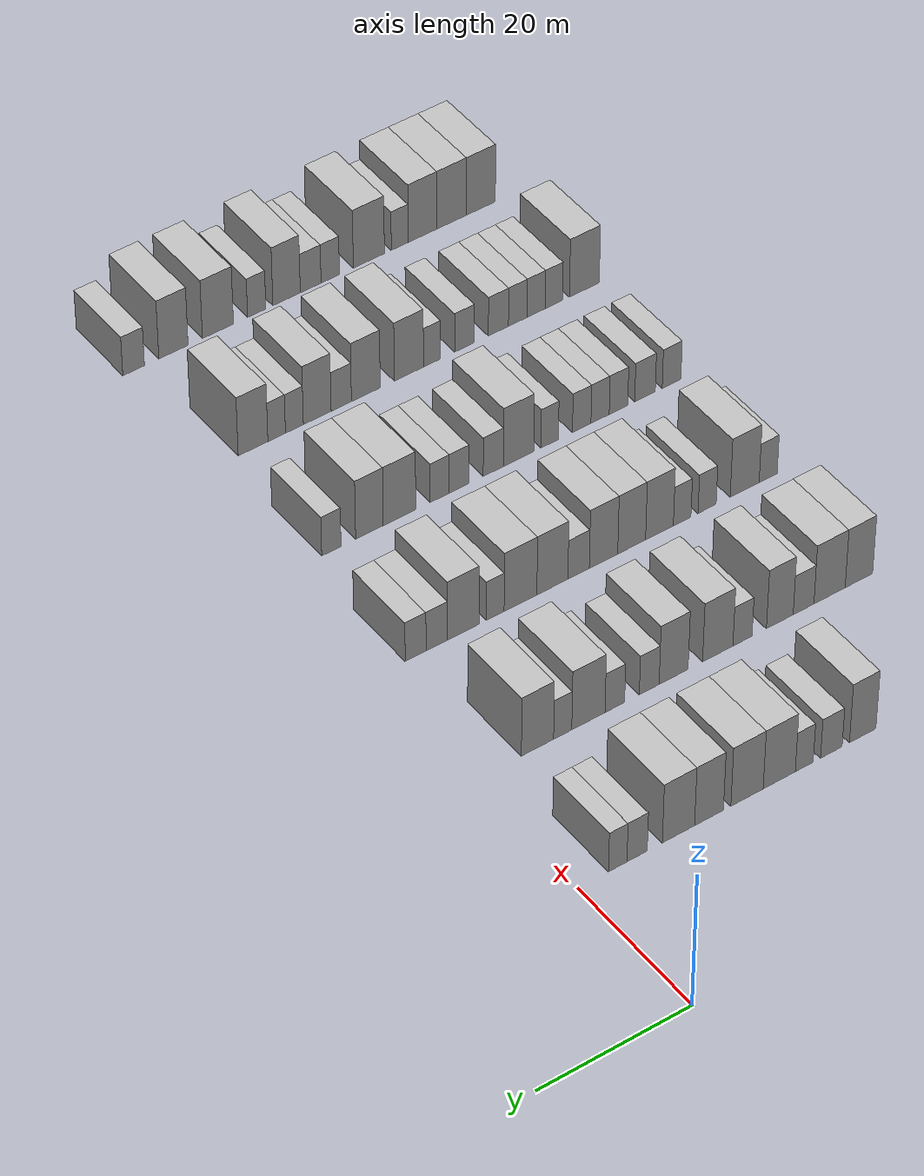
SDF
<sdf version="1.6">
 <world name="default">
  <model name="building_74">
   <static>1</static>
   <pose>25.0000 -38.3096 0 0.000000 0.000000 0.000000</pose>
   <link name="link">
    <pose>0 0 4.50 0 0 0</pose>
    <collision name="collision"><geometry><box><size>10.0000 3.6567 9.0000</size></box></geometry></collision>
    <visual name="visual">
     <cast_shadows>0</cast_shadows>
     <geometry><box><size>10.0000 3.6567 9.0000</size></box></geometry>
     <material>
      <script>
       <uri>model://HANNAS_wall/materials/scripts</uri>
       <uri>model://HANNAS_wall/materials/textures</uri>
       <name>vrc/HANNAS_wall</name>
      </script>
     </material>
    </visual>
   </link>
  </model>
  <model name="building_75">
   <static>1</static>
   <pose>25.0000 -33.9942 0 0.000000 0.000000 0.000000</pose>
   <link name="link">
    <pose>0 0 3.00 0 0 0</pose>
    <collision name="collision"><geometry><box><size>10.0000 2.9740 6.0000</size></box></geometry></collision>
    <visual name="visual">
     <cast_shadows>0</cast_shadows>
     <geometry><box><size>10.0000 2.9740 6.0000</size></box></geometry>
     <material>
      <script>
       <uri>model://HANNAS_wall/materials/scripts</uri>
       <uri>model://HANNAS_wall/materials/textures</uri>
       <name>vrc/HANNAS_wall</name>
      </script>
     </material>
    </visual>
   </link>
  </model>
  <model name="building_76">
   <static>1</static>
   <pose>25.0000 -30.2838 0 0.000000 0.000000 0.000000</pose>
   <link name="link">
    <pose>0 0 3.00 0 0 0</pose>
    <collision name="collision"><geometry><box><size>10.0000 2.4469 6.0000</size></box></geometry></collision>
    <visual name="visual">
     <cast_shadows>0</cast_shadows>
     <geometry><box><size>10.0000 2.4469 6.0000</size></box></geometry>
     <material>
      <script>
       <uri>model://HANNAS_wall/materials/scripts</uri>
       <uri>model://HANNAS_wall/materials/textures</uri>
       <name>vrc/HANNAS_wall</name>
      </script>
     </material>
    </visual>
   </link>
  </model>
  <model name="building_77">
   <static>1</static>
   <pose>25.0000 -26.8770 0 0.000000 0.000000 0.000000</pose>
   <link name="link">
    <pose>0 0 4.50 0 0 0</pose>
    <collision name="collision"><geometry><box><size>10.0000 4.3666 9.0000</size></box></geometry></collision>
    <visual name="visual">
     <cast_shadows>0</cast_shadows>
     <geometry><box><size>10.0000 4.3666 9.0000</size></box></geometry>
     <material>
      <script>
       <uri>model://HANNAS_wall/materials/scripts</uri>
       <uri>model://HANNAS_wall/materials/textures</uri>
       <name>vrc/HANNAS_wall</name>
      </script>
     </material>
    </visual>
   </link>
  </model>
  <model name="building_78">
   <static>1</static>
   <pose>25.0000 -22.5072 0 0.000000 0.000000 0.000000</pose>
   <link name="link">
    <pose>0 0 4.50 0 0 0</pose>
    <collision name="collision"><geometry><box><size>10.0000 4.3730 9.0000</size></box></geometry></collision>
    <visual name="visual">
     <cast_shadows>0</cast_shadows>
     <geometry><box><size>10.0000 4.3730 9.0000</size></box></geometry>
     <material>
      <script>
       <uri>model://HANNAS_wall/materials/scripts</uri>
       <uri>model://HANNAS_wall/materials/textures</uri>
       <name>vrc/HANNAS_wall</name>
      </script>
     </material>
    </visual>
   </link>
  </model>
  <model name="building_79">
   <static>1</static>
   <pose>25.0000 -17.3835 0 0.000000 0.000000 0.000000</pose>
   <link name="link">
    <pose>0 0 4.50 0 0 0</pose>
    <collision name="collision"><geometry><box><size>10.0000 3.8745 9.0000</size></box></geometry></collision>
    <visual name="visual">
     <cast_shadows>0</cast_shadows>
     <geometry><box><size>10.0000 3.8745 9.0000</size></box></geometry>
     <material>
      <script>
       <uri>model://HANNAS_wall/materials/scripts</uri>
       <uri>model://HANNAS_wall/materials/textures</uri>
       <name>vrc/HANNAS_wall</name>
      </script>
     </material>
    </visual>
   </link>
  </model>
  <model name="building_80">
   <static>1</static>
   <pose>25.0000 -13.2967 0 0.000000 0.000000 0.000000</pose>
   <link name="link">
    <pose>0 0 4.50 0 0 0</pose>
    <collision name="collision"><geometry><box><size>10.0000 4.2990 9.0000</size></box></geometry></collision>
    <visual name="visual">
     <cast_shadows>0</cast_shadows>
     <geometry><box><size>10.0000 4.2990 9.0000</size></box></geometry>
     <material>
      <script>
       <uri>model://HANNAS_wall/materials/scripts</uri>
       <uri>model://HANNAS_wall/materials/textures</uri>
       <name>vrc/HANNAS_wall</name>
      </script>
     </material>
    </visual>
   </link>
  </model>
  <model name="building_81">
   <static>1</static>
   <pose>25.0000 -7.8038 0 0.000000 0.000000 0.000000</pose>
   <link name="link">
    <pose>0 0 3.00 0 0 0</pose>
    <collision name="collision"><geometry><box><size>10.0000 2.6868 6.0000</size></box></geometry></collision>
    <visual name="visual">
     <cast_shadows>0</cast_shadows>
     <geometry><box><size>10.0000 2.6868 6.0000</size></box></geometry>
     <material>
      <script>
       <uri>model://HANNAS_wall/materials/scripts</uri>
       <uri>model://HANNAS_wall/materials/textures</uri>
       <name>vrc/HANNAS_wall</name>
      </script>
     </material>
    </visual>
   </link>
  </model>
  <model name="building_82">
   <static>1</static>
   <pose>25.0000 -5.2399 0 0.000000 0.000000 0.000000</pose>
   <link name="link">
    <pose>0 0 3.00 0 0 0</pose>
    <collision name="collision"><geometry><box><size>10.0000 2.4410 6.0000</size></box></geometry></collision>
    <visual name="visual">
     <cast_shadows>0</cast_shadows>
     <geometry><box><size>10.0000 2.4410 6.0000</size></box></geometry>
     <material>
      <script>
       <uri>model://HANNAS_wall/materials/scripts</uri>
       <uri>model://HANNAS_wall/materials/textures</uri>
       <name>vrc/HANNAS_wall</name>
      </script>
     </material>
    </visual>
   </link>
  </model>
  <model name="building_247">
   <static>1</static>
   <pose>44.0000 -52.8477 0 0.000000 0.000000 0.000000</pose>
   <link name="link">
    <pose>0 0 4.50 0 0 0</pose>
    <collision name="collision"><geometry><box><size>10.0000 3.8971 9.0000</size></box></geometry></collision>
    <visual name="visual">
     <cast_shadows>0</cast_shadows>
     <geometry><box><size>10.0000 3.8971 9.0000</size></box></geometry>
     <material>
      <script>
       <uri>model://HANNAS_wall/materials/scripts</uri>
       <uri>model://HANNAS_wall/materials/textures</uri>
       <name>vrc/HANNAS_wall</name>
      </script>
     </material>
    </visual>
   </link>
  </model>
  <model name="building_248">
   <static>1</static>
   <pose>44.0000 -48.6936 0 0.000000 0.000000 0.000000</pose>
   <link name="link">
    <pose>0 0 4.50 0 0 0</pose>
    <collision name="collision"><geometry><box><size>10.0000 4.4112 9.0000</size></box></geometry></collision>
    <visual name="visual">
     <cast_shadows>0</cast_shadows>
     <geometry><box><size>10.0000 4.4112 9.0000</size></box></geometry>
     <material>
      <script>
       <uri>model://HANNAS_wall/materials/scripts</uri>
       <uri>model://HANNAS_wall/materials/textures</uri>
       <name>vrc/HANNAS_wall</name>
      </script>
     </material>
    </visual>
   </link>
  </model>
  <model name="building_249">
   <static>1</static>
   <pose>44.0000 -45.0301 0 0.000000 0.000000 0.000000</pose>
   <link name="link">
    <pose>0 0 3.00 0 0 0</pose>
    <collision name="collision"><geometry><box><size>10.0000 2.9157 6.0000</size></box></geometry></collision>
    <visual name="visual">
     <cast_shadows>0</cast_shadows>
     <geometry><box><size>10.0000 2.9157 6.0000</size></box></geometry>
     <material>
      <script>
       <uri>model://HANNAS_wall/materials/scripts</uri>
       <uri>model://HANNAS_wall/materials/textures</uri>
       <name>vrc/HANNAS_wall</name>
      </script>
     </material>
    </visual>
   </link>
  </model>
  <model name="building_250">
   <static>1</static>
   <pose>44.0000 -41.6997 0 0.000000 0.000000 0.000000</pose>
   <link name="link">
    <pose>0 0 4.50 0 0 0</pose>
    <collision name="collision"><geometry><box><size>10.0000 3.7452 9.0000</size></box></geometry></collision>
    <visual name="visual">
     <cast_shadows>0</cast_shadows>
     <geometry><box><size>10.0000 3.7452 9.0000</size></box></geometry>
     <material>
      <script>
       <uri>model://HANNAS_wall/materials/scripts</uri>
       <uri>model://HANNAS_wall/materials/textures</uri>
       <name>vrc/HANNAS_wall</name>
      </script>
     </material>
    </visual>
   </link>
  </model>
  <model name="building_251">
   <static>1</static>
   <pose>44.0000 -36.4948 0 0.000000 0.000000 0.000000</pose>
   <link name="link">
    <pose>0 0 3.00 0 0 0</pose>
    <collision name="collision"><geometry><box><size>10.0000 2.6647 6.0000</size></box></geometry></collision>
    <visual name="visual">
     <cast_shadows>0</cast_shadows>
     <geometry><box><size>10.0000 2.6647 6.0000</size></box></geometry>
     <material>
      <script>
       <uri>model://HANNAS_wall/materials/scripts</uri>
       <uri>model://HANNAS_wall/materials/textures</uri>
       <name>vrc/HANNAS_wall</name>
      </script>
     </material>
    </visual>
   </link>
  </model>
  <model name="building_252">
   <static>1</static>
   <pose>44.0000 -33.0634 0 0.000000 0.000000 0.000000</pose>
   <link name="link">
    <pose>0 0 4.50 0 0 0</pose>
    <collision name="collision"><geometry><box><size>10.0000 4.1982 9.0000</size></box></geometry></collision>
    <visual name="visual">
     <cast_shadows>0</cast_shadows>
     <geometry><box><size>10.0000 4.1982 9.0000</size></box></geometry>
     <material>
      <script>
       <uri>model://HANNAS_wall/materials/scripts</uri>
       <uri>model://HANNAS_wall/materials/textures</uri>
       <name>vrc/HANNAS_wall</name>
      </script>
     </material>
    </visual>
   </link>
  </model>
  <model name="building_253">
   <static>1</static>
   <pose>44.0000 -26.9795 0 0.000000 0.000000 0.000000</pose>
   <link name="link">
    <pose>0 0 4.50 0 0 0</pose>
    <collision name="collision"><geometry><box><size>10.0000 3.9695 9.0000</size></box></geometry></collision>
    <visual name="visual">
     <cast_shadows>0</cast_shadows>
     <geometry><box><size>10.0000 3.9695 9.0000</size></box></geometry>
     <material>
      <script>
       <uri>model://HANNAS_wall/materials/scripts</uri>
       <uri>model://HANNAS_wall/materials/textures</uri>
       <name>vrc/HANNAS_wall</name>
      </script>
     </material>
    </visual>
   </link>
  </model>
  <model name="building_254">
   <static>1</static>
   <pose>44.0000 -23.6423 0 0.000000 0.000000 0.000000</pose>
   <link name="link">
    <pose>0 0 3.00 0 0 0</pose>
    <collision name="collision"><geometry><box><size>10.0000 2.7050 6.0000</size></box></geometry></collision>
    <visual name="visual">
     <cast_shadows>0</cast_shadows>
     <geometry><box><size>10.0000 2.7050 6.0000</size></box></geometry>
     <material>
      <script>
       <uri>model://HANNAS_wall/materials/scripts</uri>
       <uri>model://HANNAS_wall/materials/textures</uri>
       <name>vrc/HANNAS_wall</name>
      </script>
     </material>
    </visual>
   </link>
  </model>
  <model name="building_255">
   <static>1</static>
   <pose>44.0000 -18.9574 0 0.000000 0.000000 0.000000</pose>
   <link name="link">
    <pose>0 0 3.00 0 0 0</pose>
    <collision name="collision"><geometry><box><size>10.0000 2.6647 6.0000</size></box></geometry></collision>
    <visual name="visual">
     <cast_shadows>0</cast_shadows>
     <geometry><box><size>10.0000 2.6647 6.0000</size></box></geometry>
     <material>
      <script>
       <uri>model://HANNAS_wall/materials/scripts</uri>
       <uri>model://HANNAS_wall/materials/textures</uri>
       <name>vrc/HANNAS_wall</name>
      </script>
     </material>
    </visual>
   </link>
  </model>
  <model name="building_256">
   <static>1</static>
   <pose>44.0000 -15.3824 0 0.000000 0.000000 0.000000</pose>
   <link name="link">
    <pose>0 0 4.50 0 0 0</pose>
    <collision name="collision"><geometry><box><size>10.0000 4.4854 9.0000</size></box></geometry></collision>
    <visual name="visual">
     <cast_shadows>0</cast_shadows>
     <geometry><box><size>10.0000 4.4854 9.0000</size></box></geometry>
     <material>
      <script>
       <uri>model://HANNAS_wall/materials/scripts</uri>
       <uri>model://HANNAS_wall/materials/textures</uri>
       <name>vrc/HANNAS_wall</name>
      </script>
     </material>
    </visual>
   </link>
  </model>
  <model name="building_257">
   <static>1</static>
   <pose>44.0000 -11.9205 0 0.000000 0.000000 0.000000</pose>
   <link name="link">
    <pose>0 0 3.00 0 0 0</pose>
    <collision name="collision"><geometry><box><size>10.0000 2.4385 6.0000</size></box></geometry></collision>
    <visual name="visual">
     <cast_shadows>0</cast_shadows>
     <geometry><box><size>10.0000 2.4385 6.0000</size></box></geometry>
     <material>
      <script>
       <uri>model://HANNAS_wall/materials/scripts</uri>
       <uri>model://HANNAS_wall/materials/textures</uri>
       <name>vrc/HANNAS_wall</name>
      </script>
     </material>
    </visual>
   </link>
  </model>
  <model name="building_258">
   <static>1</static>
   <pose>44.0000 -8.5474 0 0.000000 0.000000 0.000000</pose>
   <link name="link">
    <pose>0 0 4.50 0 0 0</pose>
    <collision name="collision"><geometry><box><size>10.0000 4.3077 9.0000</size></box></geometry></collision>
    <visual name="visual">
     <cast_shadows>0</cast_shadows>
     <geometry><box><size>10.0000 4.3077 9.0000</size></box></geometry>
     <material>
      <script>
       <uri>model://HANNAS_wall/materials/scripts</uri>
       <uri>model://HANNAS_wall/materials/textures</uri>
       <name>vrc/HANNAS_wall</name>
      </script>
     </material>
    </visual>
   </link>
  </model>
  <model name="building_417">
   <static>1</static>
   <pose>63.0000 -54.7609 0 0.000000 0.000000 0.000000</pose>
   <link name="link">
    <pose>0 0 3.00 0 0 0</pose>
    <collision name="collision"><geometry><box><size>10.0000 2.5859 6.0000</size></box></geometry></collision>
    <visual name="visual">
     <cast_shadows>0</cast_shadows>
     <geometry><box><size>10.0000 2.5859 6.0000</size></box></geometry>
     <material>
      <script>
       <uri>model://HANNAS_wall/materials/scripts</uri>
       <uri>model://HANNAS_wall/materials/textures</uri>
       <name>vrc/HANNAS_wall</name>
      </script>
     </material>
    </visual>
   </link>
  </model>
  <model name="building_418">
   <static>1</static>
   <pose>63.0000 -51.3984 0 0.000000 0.000000 0.000000</pose>
   <link name="link">
    <pose>0 0 4.50 0 0 0</pose>
    <collision name="collision"><geometry><box><size>10.0000 4.1392 9.0000</size></box></geometry></collision>
    <visual name="visual">
     <cast_shadows>0</cast_shadows>
     <geometry><box><size>10.0000 4.1392 9.0000</size></box></geometry>
     <material>
      <script>
       <uri>model://HANNAS_wall/materials/scripts</uri>
       <uri>model://HANNAS_wall/materials/textures</uri>
       <name>vrc/HANNAS_wall</name>
      </script>
     </material>
    </visual>
   </link>
  </model>
  <model name="building_419">
   <static>1</static>
   <pose>63.0000 -46.0407 0 0.000000 0.000000 0.000000</pose>
   <link name="link">
    <pose>0 0 3.00 0 0 0</pose>
    <collision name="collision"><geometry><box><size>10.0000 2.5763 6.0000</size></box></geometry></collision>
    <visual name="visual">
     <cast_shadows>0</cast_shadows>
     <geometry><box><size>10.0000 2.5763 6.0000</size></box></geometry>
     <material>
      <script>
       <uri>model://HANNAS_wall/materials/scripts</uri>
       <uri>model://HANNAS_wall/materials/textures</uri>
       <name>vrc/HANNAS_wall</name>
      </script>
     </material>
    </visual>
   </link>
  </model>
  <model name="building_420">
   <static>1</static>
   <pose>63.0000 -42.5112 0 0.000000 0.000000 0.000000</pose>
   <link name="link">
    <pose>0 0 3.00 0 0 0</pose>
    <collision name="collision"><geometry><box><size>10.0000 2.4827 6.0000</size></box></geometry></collision>
    <visual name="visual">
     <cast_shadows>0</cast_shadows>
     <geometry><box><size>10.0000 2.4827 6.0000</size></box></geometry>
     <material>
      <script>
       <uri>model://HANNAS_wall/materials/scripts</uri>
       <uri>model://HANNAS_wall/materials/textures</uri>
       <name>vrc/HANNAS_wall</name>
      </script>
     </material>
    </visual>
   </link>
  </model>
  <model name="building_421">
   <static>1</static>
   <pose>63.0000 -39.3147 0 0.000000 0.000000 0.000000</pose>
   <link name="link">
    <pose>0 0 4.50 0 0 0</pose>
    <collision name="collision"><geometry><box><size>10.0000 3.9102 9.0000</size></box></geometry></collision>
    <visual name="visual">
     <cast_shadows>0</cast_shadows>
     <geometry><box><size>10.0000 3.9102 9.0000</size></box></geometry>
     <material>
      <script>
       <uri>model://HANNAS_wall/materials/scripts</uri>
       <uri>model://HANNAS_wall/materials/textures</uri>
       <name>vrc/HANNAS_wall</name>
      </script>
     </material>
    </visual>
   </link>
  </model>
  <model name="building_422">
   <static>1</static>
   <pose>63.0000 -35.4095 0 0.000000 0.000000 0.000000</pose>
   <link name="link">
    <pose>0 0 4.50 0 0 0</pose>
    <collision name="collision"><geometry><box><size>10.0000 3.9002 9.0000</size></box></geometry></collision>
    <visual name="visual">
     <cast_shadows>0</cast_shadows>
     <geometry><box><size>10.0000 3.9002 9.0000</size></box></geometry>
     <material>
      <script>
       <uri>model://HANNAS_wall/materials/scripts</uri>
       <uri>model://HANNAS_wall/materials/textures</uri>
       <name>vrc/HANNAS_wall</name>
      </script>
     </material>
    </visual>
   </link>
  </model>
  <model name="building_423">
   <static>1</static>
   <pose>63.0000 -31.4840 0 0.000000 0.000000 0.000000</pose>
   <link name="link">
    <pose>0 0 4.50 0 0 0</pose>
    <collision name="collision"><geometry><box><size>10.0000 3.9509 9.0000</size></box></geometry></collision>
    <visual name="visual">
     <cast_shadows>0</cast_shadows>
     <geometry><box><size>10.0000 3.9509 9.0000</size></box></geometry>
     <material>
      <script>
       <uri>model://HANNAS_wall/materials/scripts</uri>
       <uri>model://HANNAS_wall/materials/textures</uri>
       <name>vrc/HANNAS_wall</name>
      </script>
     </material>
    </visual>
   </link>
  </model>
  <model name="building_424">
   <static>1</static>
   <pose>63.0000 -28.0264 0 0.000000 0.000000 0.000000</pose>
   <link name="link">
    <pose>0 0 3.00 0 0 0</pose>
    <collision name="collision"><geometry><box><size>10.0000 2.9644 6.0000</size></box></geometry></collision>
    <visual name="visual">
     <cast_shadows>0</cast_shadows>
     <geometry><box><size>10.0000 2.9644 6.0000</size></box></geometry>
     <material>
      <script>
       <uri>model://HANNAS_wall/materials/scripts</uri>
       <uri>model://HANNAS_wall/materials/textures</uri>
       <name>vrc/HANNAS_wall</name>
      </script>
     </material>
    </visual>
   </link>
  </model>
  <model name="building_425">
   <static>1</static>
   <pose>63.0000 -24.4063 0 0.000000 0.000000 0.000000</pose>
   <link name="link">
    <pose>0 0 4.50 0 0 0</pose>
    <collision name="collision"><geometry><box><size>10.0000 4.2758 9.0000</size></box></geometry></collision>
    <visual name="visual">
     <cast_shadows>0</cast_shadows>
     <geometry><box><size>10.0000 4.2758 9.0000</size></box></geometry>
     <material>
      <script>
       <uri>model://HANNAS_wall/materials/scripts</uri>
       <uri>model://HANNAS_wall/materials/textures</uri>
       <name>vrc/HANNAS_wall</name>
      </script>
     </material>
    </visual>
   </link>
  </model>
  <model name="building_426">
   <static>1</static>
   <pose>63.0000 -20.0221 0 0.000000 0.000000 0.000000</pose>
   <link name="link">
    <pose>0 0 4.50 0 0 0</pose>
    <collision name="collision"><geometry><box><size>10.0000 4.4927 9.0000</size></box></geometry></collision>
    <visual name="visual">
     <cast_shadows>0</cast_shadows>
     <geometry><box><size>10.0000 4.4927 9.0000</size></box></geometry>
     <material>
      <script>
       <uri>model://HANNAS_wall/materials/scripts</uri>
       <uri>model://HANNAS_wall/materials/textures</uri>
       <name>vrc/HANNAS_wall</name>
      </script>
     </material>
    </visual>
   </link>
  </model>
  <model name="building_427">
   <static>1</static>
   <pose>63.0000 -16.5671 0 0.000000 0.000000 0.000000</pose>
   <link name="link">
    <pose>0 0 3.00 0 0 0</pose>
    <collision name="collision"><geometry><box><size>10.0000 2.4173 6.0000</size></box></geometry></collision>
    <visual name="visual">
     <cast_shadows>0</cast_shadows>
     <geometry><box><size>10.0000 2.4173 6.0000</size></box></geometry>
     <material>
      <script>
       <uri>model://HANNAS_wall/materials/scripts</uri>
       <uri>model://HANNAS_wall/materials/textures</uri>
       <name>vrc/HANNAS_wall</name>
      </script>
     </material>
    </visual>
   </link>
  </model>
  <model name="building_428">
   <static>1</static>
   <pose>63.0000 -12.2269 0 0.000000 0.000000 0.000000</pose>
   <link name="link">
    <pose>0 0 4.50 0 0 0</pose>
    <collision name="collision"><geometry><box><size>10.0000 4.2631 9.0000</size></box></geometry></collision>
    <visual name="visual">
     <cast_shadows>0</cast_shadows>
     <geometry><box><size>10.0000 4.2631 9.0000</size></box></geometry>
     <material>
      <script>
       <uri>model://HANNAS_wall/materials/scripts</uri>
       <uri>model://HANNAS_wall/materials/textures</uri>
       <name>vrc/HANNAS_wall</name>
      </script>
     </material>
    </visual>
   </link>
  </model>
  <model name="building_429">
   <static>1</static>
   <pose>63.0000 -8.6453 0 0.000000 0.000000 0.000000</pose>
   <link name="link">
    <pose>0 0 3.00 0 0 0</pose>
    <collision name="collision"><geometry><box><size>10.0000 2.9002 6.0000</size></box></geometry></collision>
    <visual name="visual">
     <cast_shadows>0</cast_shadows>
     <geometry><box><size>10.0000 2.9002 6.0000</size></box></geometry>
     <material>
      <script>
       <uri>model://HANNAS_wall/materials/scripts</uri>
       <uri>model://HANNAS_wall/materials/textures</uri>
       <name>vrc/HANNAS_wall</name>
      </script>
     </material>
    </visual>
   </link>
  </model>
  <model name="building_430">
   <static>1</static>
   <pose>63.0000 -5.7930 0 0.000000 0.000000 0.000000</pose>
   <link name="link">
    <pose>0 0 3.00 0 0 0</pose>
    <collision name="collision"><geometry><box><size>10.0000 2.8044 6.0000</size></box></geometry></collision>
    <visual name="visual">
     <cast_shadows>0</cast_shadows>
     <geometry><box><size>10.0000 2.8044 6.0000</size></box></geometry>
     <material>
      <script>
       <uri>model://HANNAS_wall/materials/scripts</uri>
       <uri>model://HANNAS_wall/materials/textures</uri>
       <name>vrc/HANNAS_wall</name>
      </script>
     </material>
    </visual>
   </link>
  </model>
  <model name="building_586">
   <static>1</static>
   <pose>82.0000 -55.3336 0 0.000000 0.000000 0.000000</pose>
   <link name="link">
    <pose>0 0 3.00 0 0 0</pose>
    <collision name="collision"><geometry><box><size>10.0000 2.7012 6.0000</size></box></geometry></collision>
    <visual name="visual">
     <cast_shadows>0</cast_shadows>
     <geometry><box><size>10.0000 2.7012 6.0000</size></box></geometry>
     <material>
      <script>
       <uri>model://HANNAS_wall/materials/scripts</uri>
       <uri>model://HANNAS_wall/materials/textures</uri>
       <name>vrc/HANNAS_wall</name>
      </script>
     </material>
    </visual>
   </link>
  </model>
  <model name="building_587">
   <static>1</static>
   <pose>82.0000 -51.4995 0 0.000000 0.000000 0.000000</pose>
   <link name="link">
    <pose>0 0 3.00 0 0 0</pose>
    <collision name="collision"><geometry><box><size>10.0000 2.9671 6.0000</size></box></geometry></collision>
    <visual name="visual">
     <cast_shadows>0</cast_shadows>
     <geometry><box><size>10.0000 2.9671 6.0000</size></box></geometry>
     <material>
      <script>
       <uri>model://HANNAS_wall/materials/scripts</uri>
       <uri>model://HANNAS_wall/materials/textures</uri>
       <name>vrc/HANNAS_wall</name>
      </script>
     </material>
    </visual>
   </link>
  </model>
  <model name="building_588">
   <static>1</static>
   <pose>82.0000 -47.6861 0 0.000000 0.000000 0.000000</pose>
   <link name="link">
    <pose>0 0 3.00 0 0 0</pose>
    <collision name="collision"><geometry><box><size>10.0000 2.6596 6.0000</size></box></geometry></collision>
    <visual name="visual">
     <cast_shadows>0</cast_shadows>
     <geometry><box><size>10.0000 2.6596 6.0000</size></box></geometry>
     <material>
      <script>
       <uri>model://HANNAS_wall/materials/scripts</uri>
       <uri>model://HANNAS_wall/materials/textures</uri>
       <name>vrc/HANNAS_wall</name>
      </script>
     </material>
    </visual>
   </link>
  </model>
  <model name="building_589">
   <static>1</static>
   <pose>82.0000 -45.0514 0 0.000000 0.000000 0.000000</pose>
   <link name="link">
    <pose>0 0 3.00 0 0 0</pose>
    <collision name="collision"><geometry><box><size>10.0000 2.6098 6.0000</size></box></geometry></collision>
    <visual name="visual">
     <cast_shadows>0</cast_shadows>
     <geometry><box><size>10.0000 2.6098 6.0000</size></box></geometry>
     <material>
      <script>
       <uri>model://HANNAS_wall/materials/scripts</uri>
       <uri>model://HANNAS_wall/materials/textures</uri>
       <name>vrc/HANNAS_wall</name>
      </script>
     </material>
    </visual>
   </link>
  </model>
  <model name="building_590">
   <static>1</static>
   <pose>82.0000 -42.4308 0 0.000000 0.000000 0.000000</pose>
   <link name="link">
    <pose>0 0 3.00 0 0 0</pose>
    <collision name="collision"><geometry><box><size>10.0000 2.6313 6.0000</size></box></geometry></collision>
    <visual name="visual">
     <cast_shadows>0</cast_shadows>
     <geometry><box><size>10.0000 2.6313 6.0000</size></box></geometry>
     <material>
      <script>
       <uri>model://HANNAS_wall/materials/scripts</uri>
       <uri>model://HANNAS_wall/materials/textures</uri>
       <name>vrc/HANNAS_wall</name>
      </script>
     </material>
    </visual>
   </link>
  </model>
  <model name="building_591">
   <static>1</static>
   <pose>82.0000 -37.8770 0 0.000000 0.000000 0.000000</pose>
   <link name="link">
    <pose>0 0 3.00 0 0 0</pose>
    <collision name="collision"><geometry><box><size>10.0000 2.4764 6.0000</size></box></geometry></collision>
    <visual name="visual">
     <cast_shadows>0</cast_shadows>
     <geometry><box><size>10.0000 2.4764 6.0000</size></box></geometry>
     <material>
      <script>
       <uri>model://HANNAS_wall/materials/scripts</uri>
       <uri>model://HANNAS_wall/materials/textures</uri>
       <name>vrc/HANNAS_wall</name>
      </script>
     </material>
    </visual>
   </link>
  </model>
  <model name="building_592">
   <static>1</static>
   <pose>82.0000 -33.4963 0 0.000000 0.000000 0.000000</pose>
   <link name="link">
    <pose>0 0 4.50 0 0 0</pose>
    <collision name="collision"><geometry><box><size>10.0000 4.2850 9.0000</size></box></geometry></collision>
    <visual name="visual">
     <cast_shadows>0</cast_shadows>
     <geometry><box><size>10.0000 4.2850 9.0000</size></box></geometry>
     <material>
      <script>
       <uri>model://HANNAS_wall/materials/scripts</uri>
       <uri>model://HANNAS_wall/materials/textures</uri>
       <name>vrc/HANNAS_wall</name>
      </script>
     </material>
    </visual>
   </link>
  </model>
  <model name="building_593">
   <static>1</static>
   <pose>82.0000 -29.9432 0 0.000000 0.000000 0.000000</pose>
   <link name="link">
    <pose>0 0 3.00 0 0 0</pose>
    <collision name="collision"><geometry><box><size>10.0000 2.8213 6.0000</size></box></geometry></collision>
    <visual name="visual">
     <cast_shadows>0</cast_shadows>
     <geometry><box><size>10.0000 2.8213 6.0000</size></box></geometry>
     <material>
      <script>
       <uri>model://HANNAS_wall/materials/scripts</uri>
       <uri>model://HANNAS_wall/materials/textures</uri>
       <name>vrc/HANNAS_wall</name>
      </script>
     </material>
    </visual>
   </link>
  </model>
  <model name="building_594">
   <static>1</static>
   <pose>82.0000 -25.1579 0 0.000000 0.000000 0.000000</pose>
   <link name="link">
    <pose>0 0 3.00 0 0 0</pose>
    <collision name="collision"><geometry><box><size>10.0000 2.7493 6.0000</size></box></geometry></collision>
    <visual name="visual">
     <cast_shadows>0</cast_shadows>
     <geometry><box><size>10.0000 2.7493 6.0000</size></box></geometry>
     <material>
      <script>
       <uri>model://HANNAS_wall/materials/scripts</uri>
       <uri>model://HANNAS_wall/materials/textures</uri>
       <name>vrc/HANNAS_wall</name>
      </script>
     </material>
    </visual>
   </link>
  </model>
  <model name="building_595">
   <static>1</static>
   <pose>82.0000 -22.4693 0 0.000000 0.000000 0.000000</pose>
   <link name="link">
    <pose>0 0 3.00 0 0 0</pose>
    <collision name="collision"><geometry><box><size>10.0000 2.6280 6.0000</size></box></geometry></collision>
    <visual name="visual">
     <cast_shadows>0</cast_shadows>
     <geometry><box><size>10.0000 2.6280 6.0000</size></box></geometry>
     <material>
      <script>
       <uri>model://HANNAS_wall/materials/scripts</uri>
       <uri>model://HANNAS_wall/materials/textures</uri>
       <name>vrc/HANNAS_wall</name>
      </script>
     </material>
    </visual>
   </link>
  </model>
  <model name="building_596">
   <static>1</static>
   <pose>82.0000 -16.9185 0 0.000000 0.000000 0.000000</pose>
   <link name="link">
    <pose>0 0 4.50 0 0 0</pose>
    <collision name="collision"><geometry><box><size>10.0000 4.4736 9.0000</size></box></geometry></collision>
    <visual name="visual">
     <cast_shadows>0</cast_shadows>
     <geometry><box><size>10.0000 4.4736 9.0000</size></box></geometry>
     <material>
      <script>
       <uri>model://HANNAS_wall/materials/scripts</uri>
       <uri>model://HANNAS_wall/materials/textures</uri>
       <name>vrc/HANNAS_wall</name>
      </script>
     </material>
    </visual>
   </link>
  </model>
  <model name="building_597">
   <static>1</static>
   <pose>82.0000 -12.7925 0 0.000000 0.000000 0.000000</pose>
   <link name="link">
    <pose>0 0 4.50 0 0 0</pose>
    <collision name="collision"><geometry><box><size>10.0000 3.7785 9.0000</size></box></geometry></collision>
    <visual name="visual">
     <cast_shadows>0</cast_shadows>
     <geometry><box><size>10.0000 3.7785 9.0000</size></box></geometry>
     <material>
      <script>
       <uri>model://HANNAS_wall/materials/scripts</uri>
       <uri>model://HANNAS_wall/materials/textures</uri>
       <name>vrc/HANNAS_wall</name>
      </script>
     </material>
    </visual>
   </link>
  </model>
  <model name="building_598">
   <static>1</static>
   <pose>82.0000 -7.5913 0 0.000000 0.000000 0.000000</pose>
   <link name="link">
    <pose>0 0 3.00 0 0 0</pose>
    <collision name="collision"><geometry><box><size>10.0000 2.6238 6.0000</size></box></geometry></collision>
    <visual name="visual">
     <cast_shadows>0</cast_shadows>
     <geometry><box><size>10.0000 2.6238 6.0000</size></box></geometry>
     <material>
      <script>
       <uri>model://HANNAS_wall/materials/scripts</uri>
       <uri>model://HANNAS_wall/materials/textures</uri>
       <name>vrc/HANNAS_wall</name>
      </script>
     </material>
    </visual>
   </link>
  </model>
  <model name="building_758">
   <static>1</static>
   <pose>101.0000 -56.7931 0 0.000000 0.000000 0.000000</pose>
   <link name="link">
    <pose>0 0 4.50 0 0 0</pose>
    <collision name="collision"><geometry><box><size>10.0000 4.3537 9.0000</size></box></geometry></collision>
    <visual name="visual">
     <cast_shadows>0</cast_shadows>
     <geometry><box><size>10.0000 4.3537 9.0000</size></box></geometry>
     <material>
      <script>
       <uri>model://HANNAS_wall/materials/scripts</uri>
       <uri>model://HANNAS_wall/materials/textures</uri>
       <name>vrc/HANNAS_wall</name>
      </script>
     </material>
    </visual>
   </link>
  </model>
  <model name="building_759">
   <static>1</static>
   <pose>101.0000 -52.3393 0 0.000000 0.000000 0.000000</pose>
   <link name="link">
    <pose>0 0 3.00 0 0 0</pose>
    <collision name="collision"><geometry><box><size>10.0000 2.5538 6.0000</size></box></geometry></collision>
    <visual name="visual">
     <cast_shadows>0</cast_shadows>
     <geometry><box><size>10.0000 2.5538 6.0000</size></box></geometry>
     <material>
      <script>
       <uri>model://HANNAS_wall/materials/scripts</uri>
       <uri>model://HANNAS_wall/materials/textures</uri>
       <name>vrc/HANNAS_wall</name>
      </script>
     </material>
    </visual>
   </link>
  </model>
  <model name="building_760">
   <static>1</static>
   <pose>101.0000 -49.7579 0 0.000000 0.000000 0.000000</pose>
   <link name="link">
    <pose>0 0 3.00 0 0 0</pose>
    <collision name="collision"><geometry><box><size>10.0000 2.6089 6.0000</size></box></geometry></collision>
    <visual name="visual">
     <cast_shadows>0</cast_shadows>
     <geometry><box><size>10.0000 2.6089 6.0000</size></box></geometry>
     <material>
      <script>
       <uri>model://HANNAS_wall/materials/scripts</uri>
       <uri>model://HANNAS_wall/materials/textures</uri>
       <name>vrc/HANNAS_wall</name>
      </script>
     </material>
    </visual>
   </link>
  </model>
  <model name="building_761">
   <static>1</static>
   <pose>101.0000 -47.1069 0 0.000000 0.000000 0.000000</pose>
   <link name="link">
    <pose>0 0 3.00 0 0 0</pose>
    <collision name="collision"><geometry><box><size>10.0000 2.6932 6.0000</size></box></geometry></collision>
    <visual name="visual">
     <cast_shadows>0</cast_shadows>
     <geometry><box><size>10.0000 2.6932 6.0000</size></box></geometry>
     <material>
      <script>
       <uri>model://HANNAS_wall/materials/scripts</uri>
       <uri>model://HANNAS_wall/materials/textures</uri>
       <name>vrc/HANNAS_wall</name>
      </script>
     </material>
    </visual>
   </link>
  </model>
  <model name="building_762">
   <static>1</static>
   <pose>101.0000 -44.3182 0 0.000000 0.000000 0.000000</pose>
   <link name="link">
    <pose>0 0 3.00 0 0 0</pose>
    <collision name="collision"><geometry><box><size>10.0000 2.8843 6.0000</size></box></geometry></collision>
    <visual name="visual">
     <cast_shadows>0</cast_shadows>
     <geometry><box><size>10.0000 2.8843 6.0000</size></box></geometry>
     <material>
      <script>
       <uri>model://HANNAS_wall/materials/scripts</uri>
       <uri>model://HANNAS_wall/materials/textures</uri>
       <name>vrc/HANNAS_wall</name>
      </script>
     </material>
    </visual>
   </link>
  </model>
  <model name="building_763">
   <static>1</static>
   <pose>101.0000 -39.4602 0 0.000000 0.000000 0.000000</pose>
   <link name="link">
    <pose>0 0 3.00 0 0 0</pose>
    <collision name="collision"><geometry><box><size>10.0000 2.8316 6.0000</size></box></geometry></collision>
    <visual name="visual">
     <cast_shadows>0</cast_shadows>
     <geometry><box><size>10.0000 2.8316 6.0000</size></box></geometry>
     <material>
      <script>
       <uri>model://HANNAS_wall/materials/scripts</uri>
       <uri>model://HANNAS_wall/materials/textures</uri>
       <name>vrc/HANNAS_wall</name>
      </script>
     </material>
    </visual>
   </link>
  </model>
  <model name="building_764">
   <static>1</static>
   <pose>101.0000 -34.8279 0 0.000000 0.000000 0.000000</pose>
   <link name="link">
    <pose>0 0 3.00 0 0 0</pose>
    <collision name="collision"><geometry><box><size>10.0000 2.4331 6.0000</size></box></geometry></collision>
    <visual name="visual">
     <cast_shadows>0</cast_shadows>
     <geometry><box><size>10.0000 2.4331 6.0000</size></box></geometry>
     <material>
      <script>
       <uri>model://HANNAS_wall/materials/scripts</uri>
       <uri>model://HANNAS_wall/materials/textures</uri>
       <name>vrc/HANNAS_wall</name>
      </script>
     </material>
    </visual>
   </link>
  </model>
  <model name="building_765">
   <static>1</static>
   <pose>101.0000 -31.5459 0 0.000000 0.000000 0.000000</pose>
   <link name="link">
    <pose>0 0 4.50 0 0 0</pose>
    <collision name="collision"><geometry><box><size>10.0000 4.1308 9.0000</size></box></geometry></collision>
    <visual name="visual">
     <cast_shadows>0</cast_shadows>
     <geometry><box><size>10.0000 4.1308 9.0000</size></box></geometry>
     <material>
      <script>
       <uri>model://HANNAS_wall/materials/scripts</uri>
       <uri>model://HANNAS_wall/materials/textures</uri>
       <name>vrc/HANNAS_wall</name>
      </script>
     </material>
    </visual>
   </link>
  </model>
  <model name="building_766">
   <static>1</static>
   <pose>101.0000 -25.4583 0 0.000000 0.000000 0.000000</pose>
   <link name="link">
    <pose>0 0 4.50 0 0 0</pose>
    <collision name="collision"><geometry><box><size>10.0000 4.0443 9.0000</size></box></geometry></collision>
    <visual name="visual">
     <cast_shadows>0</cast_shadows>
     <geometry><box><size>10.0000 4.0443 9.0000</size></box></geometry>
     <material>
      <script>
       <uri>model://HANNAS_wall/materials/scripts</uri>
       <uri>model://HANNAS_wall/materials/textures</uri>
       <name>vrc/HANNAS_wall</name>
      </script>
     </material>
    </visual>
   </link>
  </model>
  <model name="building_767">
   <static>1</static>
   <pose>101.0000 -22.0205 0 0.000000 0.000000 0.000000</pose>
   <link name="link">
    <pose>0 0 3.00 0 0 0</pose>
    <collision name="collision"><geometry><box><size>10.0000 2.8313 6.0000</size></box></geometry></collision>
    <visual name="visual">
     <cast_shadows>0</cast_shadows>
     <geometry><box><size>10.0000 2.8313 6.0000</size></box></geometry>
     <material>
      <script>
       <uri>model://HANNAS_wall/materials/scripts</uri>
       <uri>model://HANNAS_wall/materials/textures</uri>
       <name>vrc/HANNAS_wall</name>
      </script>
     </material>
    </visual>
   </link>
  </model>
  <model name="building_768">
   <static>1</static>
   <pose>101.0000 -18.6704 0 0.000000 0.000000 0.000000</pose>
   <link name="link">
    <pose>0 0 4.50 0 0 0</pose>
    <collision name="collision"><geometry><box><size>10.0000 3.8689 9.0000</size></box></geometry></collision>
    <visual name="visual">
     <cast_shadows>0</cast_shadows>
     <geometry><box><size>10.0000 3.8689 9.0000</size></box></geometry>
     <material>
      <script>
       <uri>model://HANNAS_wall/materials/scripts</uri>
       <uri>model://HANNAS_wall/materials/textures</uri>
       <name>vrc/HANNAS_wall</name>
      </script>
     </material>
    </visual>
   </link>
  </model>
  <model name="building_769">
   <static>1</static>
   <pose>101.0000 -15.4917 0 0.000000 0.000000 0.000000</pose>
   <link name="link">
    <pose>0 0 3.00 0 0 0</pose>
    <collision name="collision"><geometry><box><size>10.0000 2.4884 6.0000</size></box></geometry></collision>
    <visual name="visual">
     <cast_shadows>0</cast_shadows>
     <geometry><box><size>10.0000 2.4884 6.0000</size></box></geometry>
     <material>
      <script>
       <uri>model://HANNAS_wall/materials/scripts</uri>
       <uri>model://HANNAS_wall/materials/textures</uri>
       <name>vrc/HANNAS_wall</name>
      </script>
     </material>
    </visual>
   </link>
  </model>
  <model name="building_770">
   <static>1</static>
   <pose>101.0000 -13.0361 0 0.000000 0.000000 0.000000</pose>
   <link name="link">
    <pose>0 0 3.00 0 0 0</pose>
    <collision name="collision"><geometry><box><size>10.0000 2.4228 6.0000</size></box></geometry></collision>
    <visual name="visual">
     <cast_shadows>0</cast_shadows>
     <geometry><box><size>10.0000 2.4228 6.0000</size></box></geometry>
     <material>
      <script>
       <uri>model://HANNAS_wall/materials/scripts</uri>
       <uri>model://HANNAS_wall/materials/textures</uri>
       <name>vrc/HANNAS_wall</name>
      </script>
     </material>
    </visual>
   </link>
  </model>
  <model name="building_771">
   <static>1</static>
   <pose>101.0000 -9.7802 0 0.000000 0.000000 0.000000</pose>
   <link name="link">
    <pose>0 0 4.50 0 0 0</pose>
    <collision name="collision"><geometry><box><size>10.0000 4.0891 9.0000</size></box></geometry></collision>
    <visual name="visual">
     <cast_shadows>0</cast_shadows>
     <geometry><box><size>10.0000 4.0891 9.0000</size></box></geometry>
     <material>
      <script>
       <uri>model://HANNAS_wall/materials/scripts</uri>
       <uri>model://HANNAS_wall/materials/textures</uri>
       <name>vrc/HANNAS_wall</name>
      </script>
     </material>
    </visual>
   </link>
  </model>
  <model name="building_936">
   <static>1</static>
   <pose>120.0000 -55.3993 0 0.000000 0.000000 0.000000</pose>
   <link name="link">
    <pose>0 0 4.50 0 0 0</pose>
    <collision name="collision"><geometry><box><size>10.0000 4.2467 9.0000</size></box></geometry></collision>
    <visual name="visual">
     <cast_shadows>0</cast_shadows>
     <geometry><box><size>10.0000 4.2467 9.0000</size></box></geometry>
     <material>
      <script>
       <uri>model://HANNAS_wall/materials/scripts</uri>
       <uri>model://HANNAS_wall/materials/textures</uri>
       <name>vrc/HANNAS_wall</name>
      </script>
     </material>
    </visual>
   </link>
  </model>
  <model name="building_937">
   <static>1</static>
   <pose>120.0000 -51.1150 0 0.000000 0.000000 0.000000</pose>
   <link name="link">
    <pose>0 0 4.50 0 0 0</pose>
    <collision name="collision"><geometry><box><size>10.0000 4.3219 9.0000</size></box></geometry></collision>
    <visual name="visual">
     <cast_shadows>0</cast_shadows>
     <geometry><box><size>10.0000 4.3219 9.0000</size></box></geometry>
     <material>
      <script>
       <uri>model://HANNAS_wall/materials/scripts</uri>
       <uri>model://HANNAS_wall/materials/textures</uri>
       <name>vrc/HANNAS_wall</name>
      </script>
     </material>
    </visual>
   </link>
  </model>
  <model name="building_938">
   <static>1</static>
   <pose>120.0000 -46.8590 0 0.000000 0.000000 0.000000</pose>
   <link name="link">
    <pose>0 0 4.50 0 0 0</pose>
    <collision name="collision"><geometry><box><size>10.0000 4.1901 9.0000</size></box></geometry></collision>
    <visual name="visual">
     <cast_shadows>0</cast_shadows>
     <geometry><box><size>10.0000 4.1901 9.0000</size></box></geometry>
     <material>
      <script>
       <uri>model://HANNAS_wall/materials/scripts</uri>
       <uri>model://HANNAS_wall/materials/textures</uri>
       <name>vrc/HANNAS_wall</name>
      </script>
     </material>
    </visual>
   </link>
  </model>
  <model name="building_939">
   <static>1</static>
   <pose>120.0000 -43.5374 0 0.000000 0.000000 0.000000</pose>
   <link name="link">
    <pose>0 0 3.00 0 0 0</pose>
    <collision name="collision"><geometry><box><size>10.0000 2.4531 6.0000</size></box></geometry></collision>
    <visual name="visual">
     <cast_shadows>0</cast_shadows>
     <geometry><box><size>10.0000 2.4531 6.0000</size></box></geometry>
     <material>
      <script>
       <uri>model://HANNAS_wall/materials/scripts</uri>
       <uri>model://HANNAS_wall/materials/textures</uri>
       <name>vrc/HANNAS_wall</name>
      </script>
     </material>
    </visual>
   </link>
  </model>
  <model name="building_940">
   <static>1</static>
   <pose>120.0000 -39.0681 0 0.000000 0.000000 0.000000</pose>
   <link name="link">
    <pose>0 0 4.50 0 0 0</pose>
    <collision name="collision"><geometry><box><size>10.0000 4.4855 9.0000</size></box></geometry></collision>
    <visual name="visual">
     <cast_shadows>0</cast_shadows>
     <geometry><box><size>10.0000 4.4855 9.0000</size></box></geometry>
     <material>
      <script>
       <uri>model://HANNAS_wall/materials/scripts</uri>
       <uri>model://HANNAS_wall/materials/textures</uri>
       <name>vrc/HANNAS_wall</name>
      </script>
     </material>
    </visual>
   </link>
  </model>
  <model name="building_941">
   <static>1</static>
   <pose>120.0000 -33.5112 0 0.000000 0.000000 0.000000</pose>
   <link name="link">
    <pose>0 0 3.00 0 0 0</pose>
    <collision name="collision"><geometry><box><size>10.0000 2.6284 6.0000</size></box></geometry></collision>
    <visual name="visual">
     <cast_shadows>0</cast_shadows>
     <geometry><box><size>10.0000 2.6284 6.0000</size></box></geometry>
     <material>
      <script>
       <uri>model://HANNAS_wall/materials/scripts</uri>
       <uri>model://HANNAS_wall/materials/textures</uri>
       <name>vrc/HANNAS_wall</name>
      </script>
     </material>
    </visual>
   </link>
  </model>
  <model name="building_942">
   <static>1</static>
   <pose>120.0000 -30.7161 0 0.000000 0.000000 0.000000</pose>
   <link name="link">
    <pose>0 0 3.00 0 0 0</pose>
    <collision name="collision"><geometry><box><size>10.0000 2.9618 6.0000</size></box></geometry></collision>
    <visual name="visual">
     <cast_shadows>0</cast_shadows>
     <geometry><box><size>10.0000 2.9618 6.0000</size></box></geometry>
     <material>
      <script>
       <uri>model://HANNAS_wall/materials/scripts</uri>
       <uri>model://HANNAS_wall/materials/textures</uri>
       <name>vrc/HANNAS_wall</name>
      </script>
     </material>
    </visual>
   </link>
  </model>
  <model name="building_943">
   <static>1</static>
   <pose>120.0000 -27.2882 0 0.000000 0.000000 0.000000</pose>
   <link name="link">
    <pose>0 0 4.50 0 0 0</pose>
    <collision name="collision"><geometry><box><size>10.0000 3.8940 9.0000</size></box></geometry></collision>
    <visual name="visual">
     <cast_shadows>0</cast_shadows>
     <geometry><box><size>10.0000 3.8940 9.0000</size></box></geometry>
     <material>
      <script>
       <uri>model://HANNAS_wall/materials/scripts</uri>
       <uri>model://HANNAS_wall/materials/textures</uri>
       <name>vrc/HANNAS_wall</name>
      </script>
     </material>
    </visual>
   </link>
  </model>
  <model name="building_944">
   <static>1</static>
   <pose>120.0000 -23.0549 0 0.000000 0.000000 0.000000</pose>
   <link name="link">
    <pose>0 0 3.00 0 0 0</pose>
    <collision name="collision"><geometry><box><size>10.0000 2.5725 6.0000</size></box></geometry></collision>
    <visual name="visual">
     <cast_shadows>0</cast_shadows>
     <geometry><box><size>10.0000 2.5725 6.0000</size></box></geometry>
     <material>
      <script>
       <uri>model://HANNAS_wall/materials/scripts</uri>
       <uri>model://HANNAS_wall/materials/textures</uri>
       <name>vrc/HANNAS_wall</name>
      </script>
     </material>
    </visual>
   </link>
  </model>
  <model name="building_945">
   <static>1</static>
   <pose>120.0000 -17.5923 0 0.000000 0.000000 0.000000</pose>
   <link name="link">
    <pose>0 0 4.50 0 0 0</pose>
    <collision name="collision"><geometry><box><size>10.0000 4.3526 9.0000</size></box></geometry></collision>
    <visual name="visual">
     <cast_shadows>0</cast_shadows>
     <geometry><box><size>10.0000 4.3526 9.0000</size></box></geometry>
     <material>
      <script>
       <uri>model://HANNAS_wall/materials/scripts</uri>
       <uri>model://HANNAS_wall/materials/textures</uri>
       <name>vrc/HANNAS_wall</name>
      </script>
     </material>
    </visual>
   </link>
  </model>
  <model name="building_946">
   <static>1</static>
   <pose>120.0000 -11.3806 0 0.000000 0.000000 0.000000</pose>
   <link name="link">
    <pose>0 0 4.50 0 0 0</pose>
    <collision name="collision"><geometry><box><size>10.0000 4.0709 9.0000</size></box></geometry></collision>
    <visual name="visual">
     <cast_shadows>0</cast_shadows>
     <geometry><box><size>10.0000 4.0709 9.0000</size></box></geometry>
     <material>
      <script>
       <uri>model://HANNAS_wall/materials/scripts</uri>
       <uri>model://HANNAS_wall/materials/textures</uri>
       <name>vrc/HANNAS_wall</name>
      </script>
     </material>
    </visual>
   </link>
  </model>
  <model name="building_947">
   <static>1</static>
   <pose>120.0000 -5.8514 0 0.000000 0.000000 0.000000</pose>
   <link name="link">
    <pose>0 0 3.00 0 0 0</pose>
    <collision name="collision"><geometry><box><size>10.0000 2.9875 6.0000</size></box></geometry></collision>
    <visual name="visual">
     <cast_shadows>0</cast_shadows>
     <geometry><box><size>10.0000 2.9875 6.0000</size></box></geometry>
     <material>
      <script>
       <uri>model://HANNAS_wall/materials/scripts</uri>
       <uri>model://HANNAS_wall/materials/textures</uri>
       <name>vrc/HANNAS_wall</name>
      </script>
     </material>
    </visual>
   </link>
  </model>
 </world>
</sdf>
